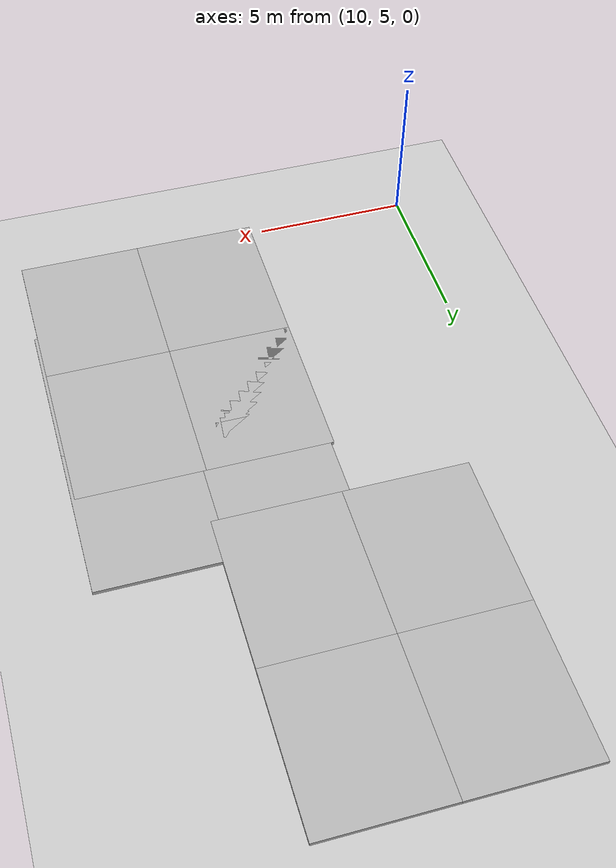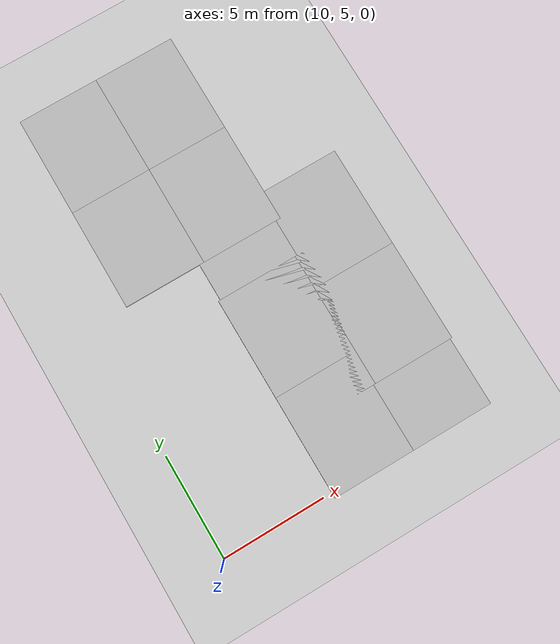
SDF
<sdf version="1.7">
 <world name="default">
  <model name="ground_plane">
   <static>1</static>
   <link name="link">
    <collision name="collision">
     <geometry><plane><normal>0 0 1</normal><size>100 100</size></plane></geometry>
     <surface>
      <contact><collide_bitmask>65535</collide_bitmask></contact>
      <friction><ode><mu>100</mu><mu2>50</mu2></ode></friction>
     </surface>
    </collision>
    <visual name="visual">
     <cast_shadows>0</cast_shadows>
     <geometry><plane><normal>0 0 1</normal><size>100 100</size></plane></geometry>
     <material>
      <script><uri>file://media/materials/scripts/gazebo.material</uri><name>Gazebo/Grey</name></script>
     </material>
    </visual>
   </link>
  </model>
  <model name="mud_box_2">
   <static>1</static>
   <link name="link">
    <collision name="collision"><geometry><box><size>8 10 0.2</size></box></geometry></collision>
    <visual name="visual_1">
     <pose>-2 2.5 0 0 -0 0</pose>
     <cast_shadows>0</cast_shadows>
     <geometry><box><size>4 5 0.2</size></box></geometry>
     <material>
      <script>
       <uri>model://mud_box/materials/scripts</uri>
       <uri>model://mud_box/materials/textures</uri>
       <name>vrc/mud</name>
      </script>
     </material>
    </visual>
    <visual name="visual_2">
     <pose>2 2.5 0 0 -0 0</pose>
     <cast_shadows>0</cast_shadows>
     <geometry><box><size>4 5 0.2</size></box></geometry>
     <material>
      <script>
       <uri>model://mud_box/materials/scripts</uri>
       <uri>model://mud_box/materials/textures</uri>
       <name>vrc/mud</name>
      </script>
     </material>
    </visual>
    <visual name="visual_3">
     <pose>2 -2.5 0 0 -0 0</pose>
     <cast_shadows>0</cast_shadows>
     <geometry><box><size>4 5 0.2</size></box></geometry>
     <material>
      <script>
       <uri>model://mud_box/materials/scripts</uri>
       <uri>model://mud_box/materials/textures</uri>
       <name>vrc/mud</name>
      </script>
     </material>
    </visual>
    <visual name="visual_4">
     <pose>-2 -2.5 0 0 -0 0</pose>
     <cast_shadows>0</cast_shadows>
     <geometry><box><size>4 5 0.2</size></box></geometry>
     <material>
      <script>
       <uri>model://mud_box/materials/scripts</uri>
       <uri>model://mud_box/materials/textures</uri>
       <name>vrc/mud</name>
      </script>
     </material>
    </visual>
   </link>
   <pose>19.5032 13.0496 0 0 -0 0</pose>
  </model>
  <model name="mud_box_3">
   <static>1</static>
   <link name="link">
    <collision name="collision"><geometry><box><size>8 10 0.2</size></box></geometry></collision>
    <visual name="visual_1">
     <pose>-2 2.5 0 0 -0 0</pose>
     <cast_shadows>0</cast_shadows>
     <geometry><box><size>4 5 0.2</size></box></geometry>
     <material>
      <script>
       <uri>model://mud_box/materials/scripts</uri>
       <uri>model://mud_box/materials/textures</uri>
       <name>vrc/mud</name>
      </script>
     </material>
    </visual>
    <visual name="visual_2">
     <pose>2 2.5 0 0 -0 0</pose>
     <cast_shadows>0</cast_shadows>
     <geometry><box><size>4 5 0.2</size></box></geometry>
     <material>
      <script>
       <uri>model://mud_box/materials/scripts</uri>
       <uri>model://mud_box/materials/textures</uri>
       <name>vrc/mud</name>
      </script>
     </material>
    </visual>
    <visual name="visual_3">
     <pose>2 -2.5 0 0 -0 0</pose>
     <cast_shadows>0</cast_shadows>
     <geometry><box><size>4 5 0.2</size></box></geometry>
     <material>
      <script>
       <uri>model://mud_box/materials/scripts</uri>
       <uri>model://mud_box/materials/textures</uri>
       <name>vrc/mud</name>
      </script>
     </material>
    </visual>
    <visual name="visual_4">
     <pose>-2 -2.5 0 0 -0 0</pose>
     <cast_shadows>0</cast_shadows>
     <geometry><box><size>4 5 0.2</size></box></geometry>
     <material>
      <script>
       <uri>model://mud_box/materials/scripts</uri>
       <uri>model://mud_box/materials/textures</uri>
       <name>vrc/mud</name>
      </script>
     </material>
    </visual>
   </link>
   <pose>15.7399 21.5917 0 0 -0 0</pose>
  </model>
  <model name="mud_box_4">
   <static>1</static>
   <link name="link">
    <collision name="collision"><geometry><box><size>8 10 0.2</size></box></geometry></collision>
    <visual name="visual_1">
     <pose>-2 2.5 0 0 -0 0</pose>
     <cast_shadows>0</cast_shadows>
     <geometry><box><size>4 5 0.2</size></box></geometry>
     <material>
      <script>
       <uri>model://mud_box/materials/scripts</uri>
       <uri>model://mud_box/materials/textures</uri>
       <name>vrc/mud</name>
      </script>
     </material>
    </visual>
    <visual name="visual_2">
     <pose>2 2.5 0 0 -0 0</pose>
     <cast_shadows>0</cast_shadows>
     <geometry><box><size>4 5 0.2</size></box></geometry>
     <material>
      <script>
       <uri>model://mud_box/materials/scripts</uri>
       <uri>model://mud_box/materials/textures</uri>
       <name>vrc/mud</name>
      </script>
     </material>
    </visual>
    <visual name="visual_3">
     <pose>2 -2.5 0 0 -0 0</pose>
     <cast_shadows>0</cast_shadows>
     <geometry><box><size>4 5 0.2</size></box></geometry>
     <material>
      <script>
       <uri>model://mud_box/materials/scripts</uri>
       <uri>model://mud_box/materials/textures</uri>
       <name>vrc/mud</name>
      </script>
     </material>
    </visual>
    <visual name="visual_4">
     <pose>-2 -2.5 0 0 -0 0</pose>
     <cast_shadows>0</cast_shadows>
     <geometry><box><size>4 5 0.2</size></box></geometry>
     <material>
      <script>
       <uri>model://mud_box/materials/scripts</uri>
       <uri>model://mud_box/materials/textures</uri>
       <name>vrc/mud</name>
      </script>
     </material>
    </visual>
   </link>
   <pose>19.4038 9.74361 0 0 -0 0</pose>
  </model>
 </world>
</sdf>
